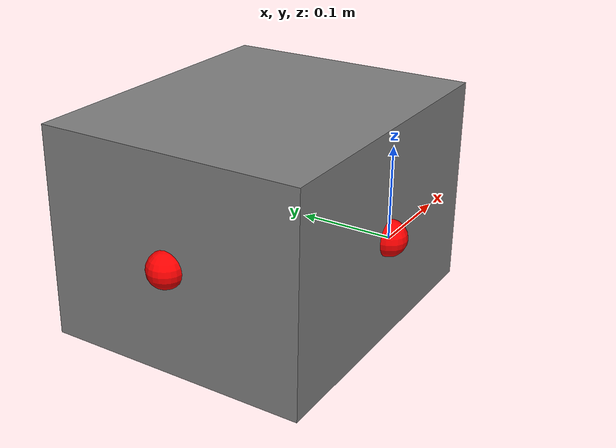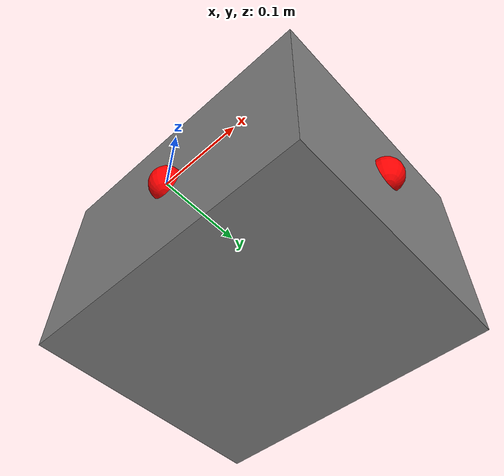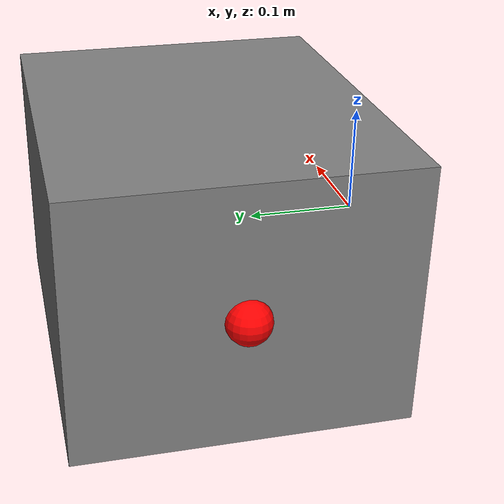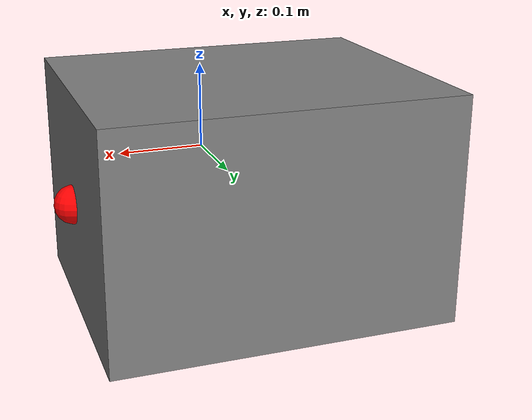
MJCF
<?xml version="1.0"?>
<mujoco model="plasticbox">
  <!-- World body -->
  <worldbody>
    <body name="plasticbox_simplified_body">
      <freejoint name="plasticbox_root"/>
      <inertial mass="2.0" pos="0 0 0" diaginertia="0.1 0.1 0.1"/>

      <site name="plasticbox_root" pos="0 0 0" size="0.02" rgba="1 0 0 1"/>
      <site name="left_hand_contact" pos="0.18 0.15 0.0" size="0.02" rgba="1 0 0 1"/>
      <site name="right_hand_contact" pos="-0.18 0.15 0.0" size="0.02" rgba="1 0 0 1"/>

      <geom type="box" size="0.18 0.15 0.12" pos="0 0.15 0" quat="1 0 0 0"/>
    </body>
  </worldbody>

</mujoco>
